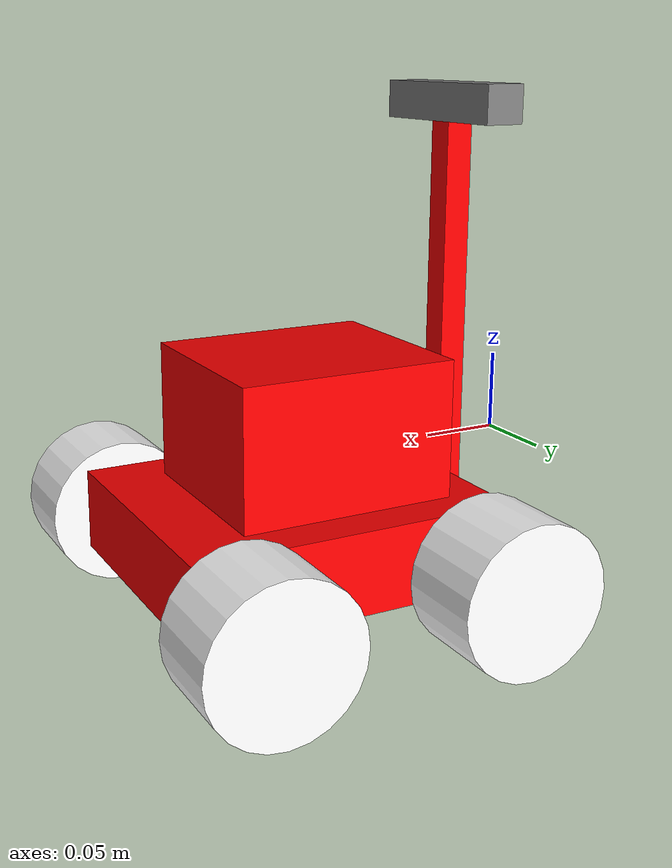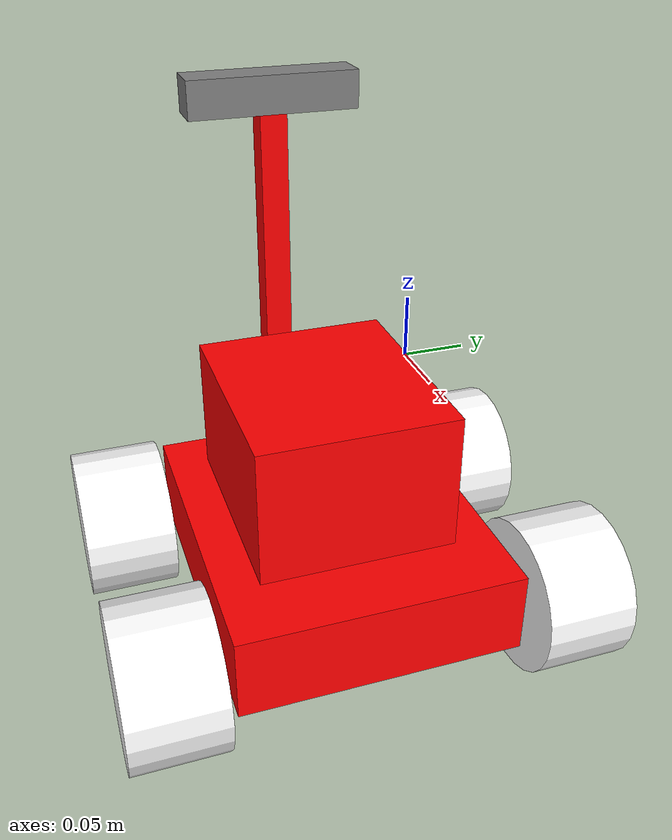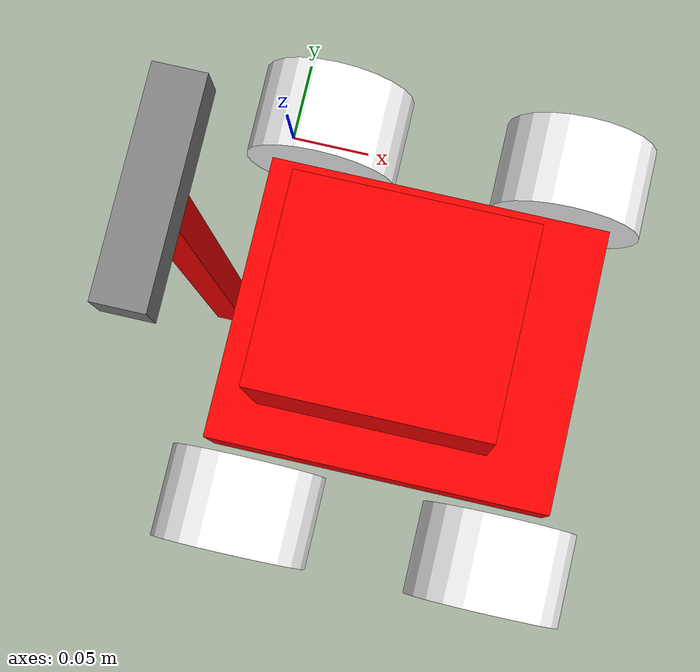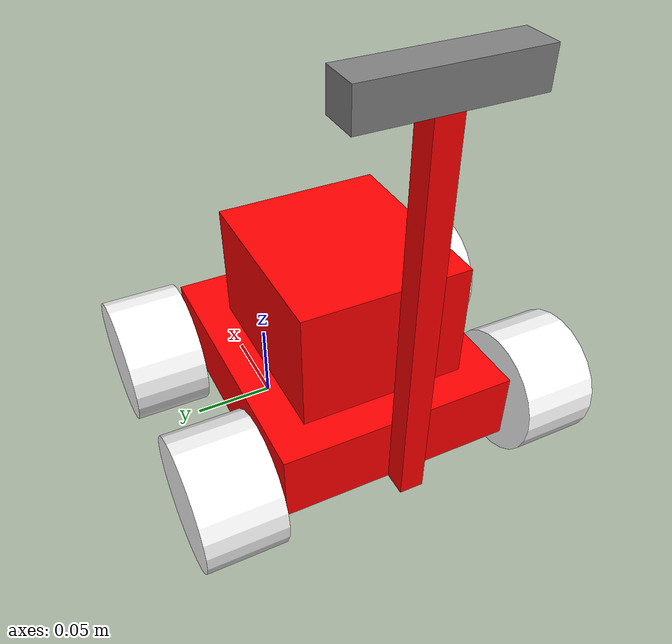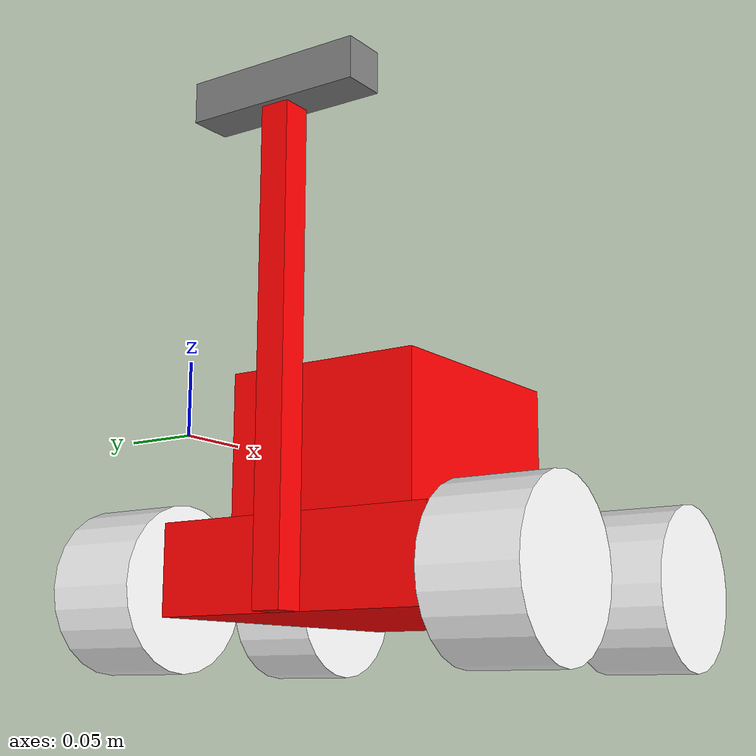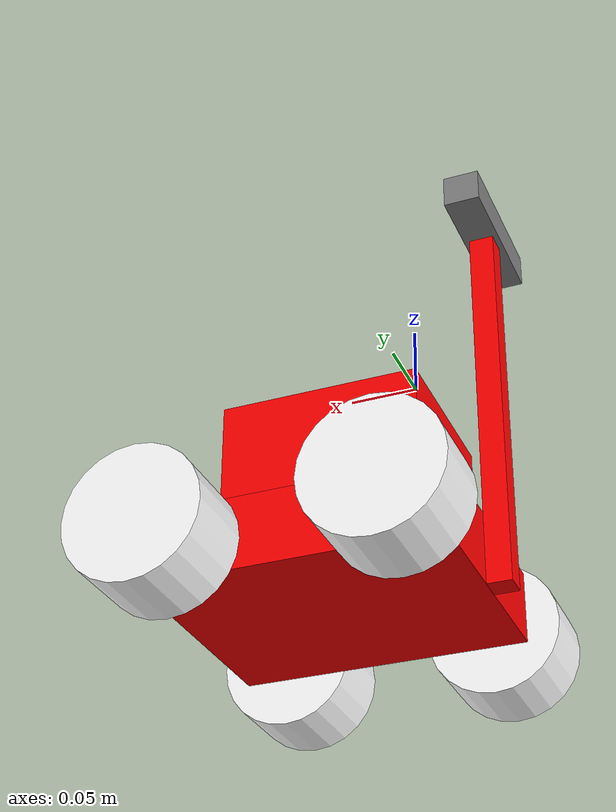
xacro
<?xml version="1.0" ?>
<robot name="mariam" xmlns:xacro="http://ros.org/wiki/xacro">

  <!-- ****************** ROBOT CONSTANTS *******************************  -->
  <xacro:arg name="robot_name" default="mariam"/>
  <!-- Define the size of the robot's main chassis in meters -->
  <xacro:property name="base_width" value="0.20"/>
  <xacro:property name="base_length" value="0.24"/>
  <xacro:property name="base_height" value="0.06"/>

  <!-- Define the shape of the robot's two back wheels in meters -->
  <xacro:property name="wheel_radius" value="0.055"/>
  <xacro:property name="wheel_width" value="0.065"/>

  <!-- x-axis points forward, y-axis points to left, z-axis points upwards -->
  <!-- Define the gap between the wheel and chassis along y-axis in meters -->
  <xacro:property name="wheel_ygap" value="0.04"/>

  <!-- Position the wheels along the z-axis -->
  <xacro:property name="wheel_zoff" value="0.01"/>

  <!-- Position the wheels along the x-axis -->
  <xacro:property name="wheel_xoff" value="0.09"/>

  <!-- Defines the position and orientation of the camera joint -->
  <!-- if the robot name arg is 'monica', the camera will be flipped by pi radians -->
  <xacro:macro name="camera_joint" params="robot_name">
    <joint name="camera_joint" type="fixed">
      <parent link="base_link"/>
      <child link="camera_link"/>
      <origin xyz="-${base_length/2 + 0.01} 0 0.3" rpy="0 0 ${pi if robot_name == 'monica' else 0}"/>
    </joint>
  </xacro:macro>

  <!-- Define intertial property macros  -->
  <xacro:macro name="box_inertia" params="m w h d">
    <inertial>
      <origin xyz="0 0 0" rpy="${pi/2} 0 ${pi/2}"/>
      <mass value="${m}"/>
      <inertia ixx="${(m/12) * (h*h + d*d)}" ixy="0.0" ixz="0.0" iyy="${(m/12) * (w*w + d*d)}" iyz="0.0" izz="${(m/12) * (w*w + h*h)}"/>
    </inertial>
  </xacro:macro>

  <xacro:macro name="cylinder_inertia" params="m r h">
    <inertial>
      <origin xyz="0 0 0" rpy="${pi/2} 0 0" />
      <mass value="${m}"/>
      <inertia ixx="${(m/12) * (3*r*r + h*h)}" ixy = "0" ixz = "0" iyy="${(m/12) * (3*r*r + h*h)}" iyz = "0" izz="${(m/2) * (r*r)}"/>
    </inertial>
  </xacro:macro>

  <xacro:macro name="sphere_inertia" params="m r">
    <inertial>
      <mass value="${m}"/>
      <inertia ixx="${(2/5) * m * (r*r)}" ixy="0.0" ixz="0.0" iyy="${(2/5) * m * (r*r)}" iyz="0.0" izz="${(2/5) * m * (r*r)}"/>
    </inertial>
  </xacro:macro>

  <!-- ****************** VICON FRAME ***************************  -->
  <link name="vicon_link"></link>

  <joint name="vicon_joint" type="fixed">
    <parent link="vicon_link"/>
    <child link="base_link" />
    <origin xyz="0.1 -0.1 -0.09" rpy="0 0 0"/>
  </joint>

  <!-- ****************** ROBOT BASE FOOTPRINT ***************************  -->
  <!-- Define the center of the main robot chassis projected on the ground -->

  <!-- The base footprint of the robot is located underneath the chassis -->

  <!-- ********************** ROBOT CHASSIS *********************************  -->
  <link name="base_link">
    <!-- base chassis -->
    <visual>
      <origin xyz="0 0 0" rpy="0 0 0"/>
      <geometry>
        <box size="${base_length} ${base_width} ${base_height}"/>
      </geometry>
      <material name="Red">
        <color rgba="${255/255} ${0/255} ${0/255} 1.0"/>
      </material>
    </visual>
    <collision>
      <geometry>
        <box size="${base_length} ${base_width} ${base_height}"/>
      </geometry>
    </collision>

    <!-- computer -->
    <visual>
      <origin xyz="-0.01 0 ${base_height/2 + 0.05}" rpy="0 0 0"/>
      <geometry>
        <box size="${base_length - 0.08} ${base_width - 0.06} 0.1"/>
      </geometry>
      <material name="Red">
        <color rgba="${255/255} ${0/255} ${0/255} 1.0"/>
      </material>
    </visual>
    <collision>
      <origin xyz="-0.01 0 ${base_height/2 + 0.05}" rpy="0 0 0"/>
      <geometry>
        <box size="${base_length - 0.08} ${base_width - 0.06} 0.1"/>
      </geometry>
    </collision>

    <!-- camera stand -->
    <visual>
      <origin xyz="-${(base_length/2) + 0.01} 0 ${((0.3 - (0.027/2)) - base_height/2)/2}" rpy="0 0 0"/>
      <geometry>
        <box size="0.02 0.02 ${0.3 - (0.027/2) + base_height/2}"/>
      </geometry>
      <material name="Red">
        <color rgba="${255/255} ${0/255} ${0/255} 1.0"/>
      </material>
    </visual>
    <collision>
      <origin xyz="-${(base_length/2) + 0.01} 0 ${((0.3 - (0.027/2)) - base_height/2)/2}" rpy="0 0 0"/>
      <geometry>
        <box size="0.02 0.02 ${0.3 - (0.027/2) + base_height/2}"/>
      </geometry>
    </collision>

    <xacro:box_inertia m="40.0" w="${base_width}" d="${base_length}" h="${base_height}"/>
  </link>

  <!-- *********************** DRIVE WHEELS ******************************  -->
  <xacro:macro name="wheel" params="prefix x_reflect y_reflect">
    <link name="${prefix}_link">
      <visual>
        <origin xyz="0 0 0" rpy="1.5707963267949 0 0"/>
        <geometry>
            <cylinder radius="${wheel_radius}" length="${wheel_width}"/>
        </geometry>
        <material name="White">
          <color rgba="${255/255} ${255/255} ${255/255} 1.0"/>
        </material>
      </visual>

      <collision>
        <origin xyz="0 0 0" rpy="${pi/2} 0 0"/>
        <geometry>
          <cylinder radius="${wheel_radius}" length="${wheel_width}"/>
        </geometry>
      </collision>

      <xacro:cylinder_inertia m="5.0" r="${wheel_radius}" h="${wheel_width}"/>

    </link>

    <!-- Connect the wheels to the base_link at the appropriate location, and
         define a continuous joint to allow the wheels to freely rotate about
         an axis -->
    <joint name="${prefix}_joint" type="continuous">
      <parent link="base_link"/>
      <child link="${prefix}_link"/>
      <origin xyz="${x_reflect*wheel_xoff} ${y_reflect*(base_width/2+wheel_ygap)} ${-wheel_zoff}" rpy="0 0 0"/>
      <axis xyz="0 1 0"/>
      <dynamics damping="0.5" friction="0.1"/>
    </joint>
  </xacro:macro>

  <!-- Instantiate four wheels using the macro we just made through the
       xacro:wheel tags. We also define the parameters to have two wheel
       on both sides -->
  <xacro:wheel prefix="drivewheel_left_front" x_reflect="1" y_reflect="1" />
  <xacro:wheel prefix="drivewheel_right_front" x_reflect="1" y_reflect="-1" />
  <xacro:wheel prefix="drivewheel_left_back" x_reflect="-1" y_reflect="1" />
  <xacro:wheel prefix="drivewheel_right_back" x_reflect="-1" y_reflect="-1" />

  <!-- *********************** REALSENSE SETUP **********************************  -->
  <link name="camera_link">
    <visual>
      <geometry>
        <box size=" 0.029 0.124 0.027"/>
      </geometry>
      <material name="Grey">
        <color rgba="0.5 0.5 0.5 1.0"/>
      </material>
    </visual>
    <collision>
      <geometry>
        <box size="0.029 0.124 0.027"/>
      </geometry>
    </collision>
    <xacro:box_inertia m="1.0" w="0.029" d="0.124" h="0.027"/>
  </link>

  <xacro:camera_joint robot_name="$(arg robot_name)"/>

</robot>
